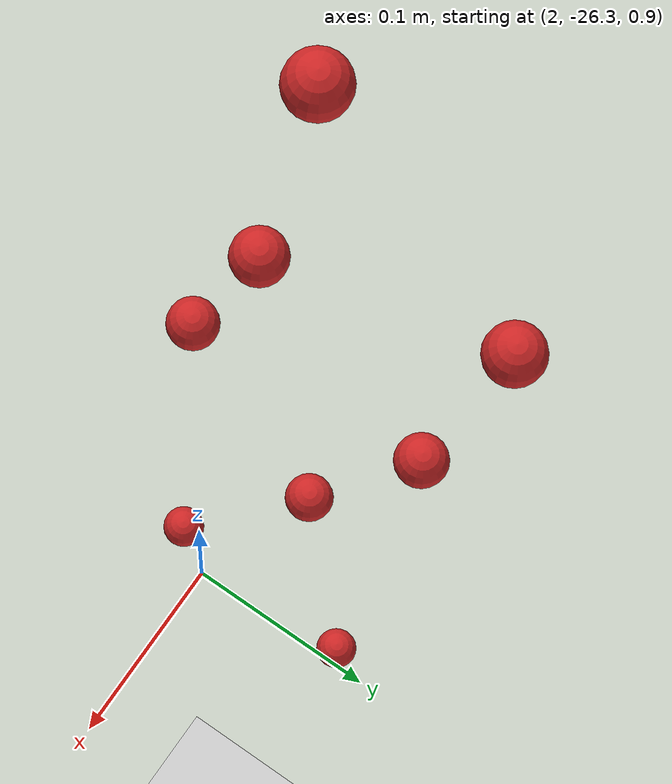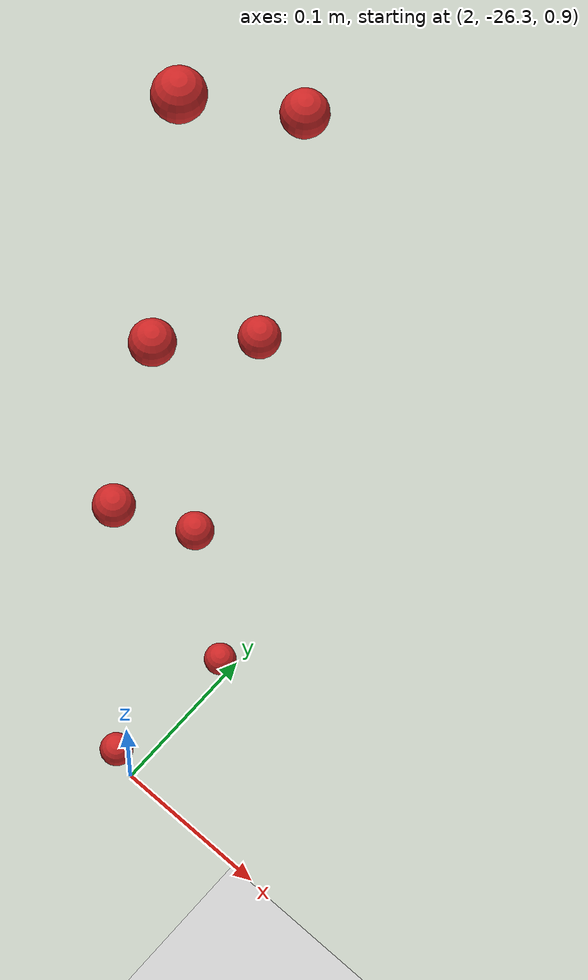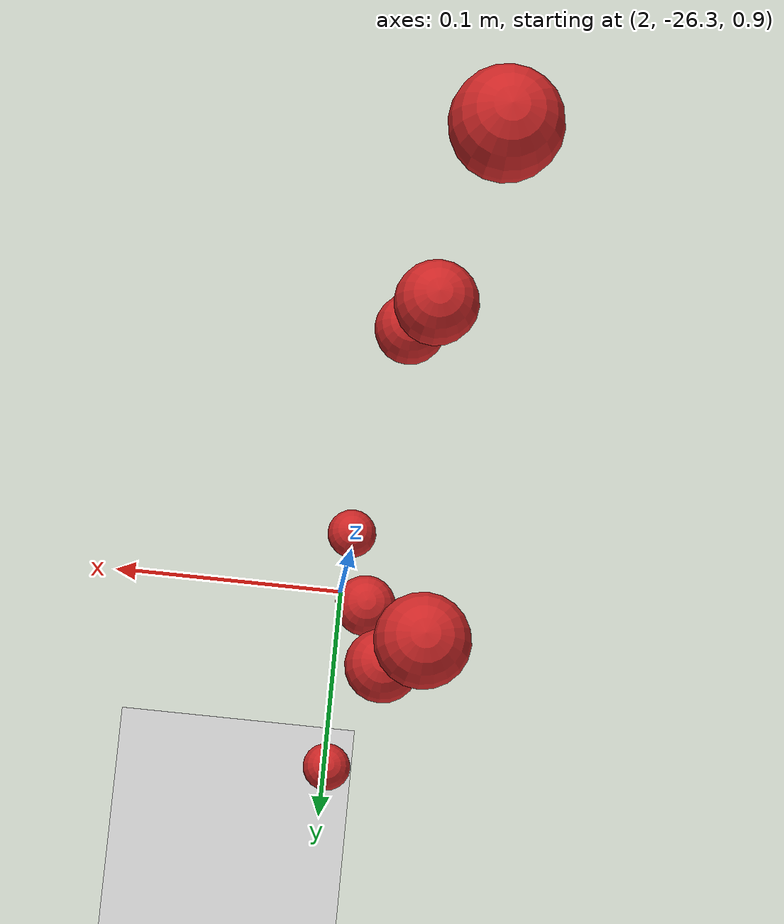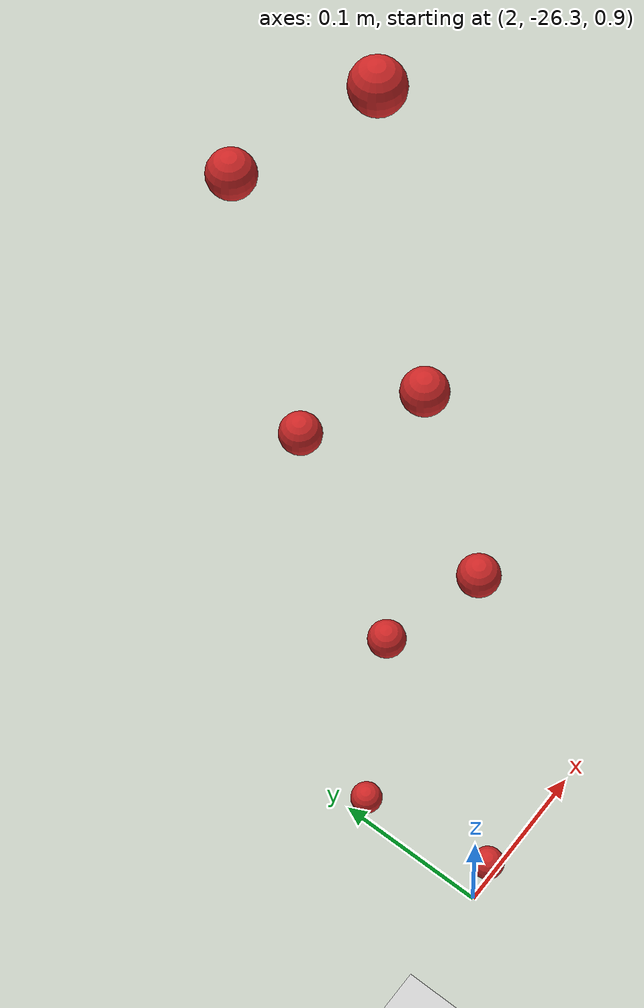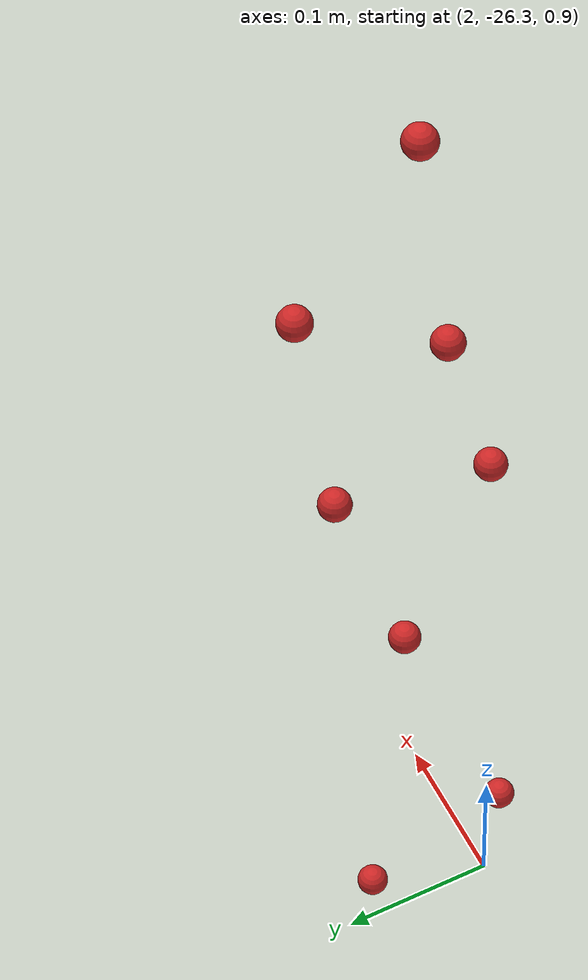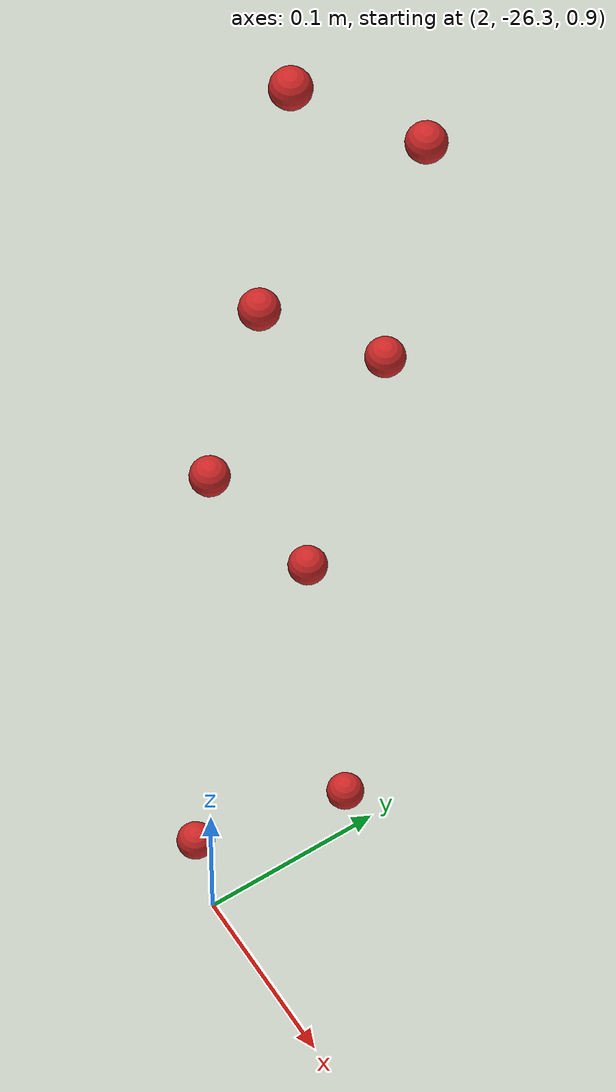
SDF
<sdf version="1.4">
 <world name="default">
  <model name="ground_plane">
   <static>1</static>
   <link name="link">
    <collision name="collision">
     <geometry><plane><normal>0 0 1</normal><size>100 100</size></plane></geometry>
     <surface><friction><ode><mu>100</mu><mu2>50</mu2></ode></friction></surface>
    </collision>
    <visual name="visual">
     <cast_shadows>0</cast_shadows>
     <geometry><plane><normal>0 0 1</normal><size>100 100</size></plane></geometry>
     <material>
      <script><uri>file://media/materials/scripts/gazebo.material</uri><name>Gazebo/Grey</name></script>
     </material>
    </visual>
    <velocity_decay><linear>0</linear><angular>0</angular></velocity_decay>
   </link>
  </model>
  <model name="apple572">
   <link name="my_apple">
    <inertial>
     <pose>2 0 0 0 -0 0</pose>
     <mass>1</mass>
     <inertia><ixx>1</ixx><ixy>0</ixy><ixz>0</ixz><iyy>1</iyy><iyz>0</iyz><izz>1</izz></inertia>
    </inertial>
    <collision name="my_apple_collision">
     <pose>2 0 1 0 -0 0</pose>
     <geometry><sphere><radius>0.01</radius></sphere></geometry>
    </collision>
    <visual name="my_apple_visual">
     <pose>2 0 1 0 -0 0</pose>
     <geometry><sphere><radius>0.01</radius></sphere></geometry>
     <material><script><name>Gazebo/Red</name><uri>__default__</uri></script></material>
    </visual>
    <gravity>0</gravity>
    <velocity_decay><linear>0</linear><angular>0</angular></velocity_decay>
   </link>
   <pose>0 -26.267 0.466315 0 -0 0</pose>
   <static>0</static>
  </model>
  <model name="apple573">
   <link name="my_apple">
    <inertial>
     <pose>2 0 0 0 -0 0</pose>
     <mass>1</mass>
     <inertia><ixx>1</ixx><ixy>0</ixy><ixz>0</ixz><iyy>1</iyy><iyz>0</iyz><izz>1</izz></inertia>
    </inertial>
    <collision name="my_apple_collision">
     <pose>2 0 1 0 -0 0</pose>
     <geometry><sphere><radius>0.01</radius></sphere></geometry>
    </collision>
    <visual name="my_apple_visual">
     <pose>2 0 1 0 -0 0</pose>
     <geometry><sphere><radius>0.01</radius></sphere></geometry>
     <material><script><name>Gazebo/Red</name><uri>__default__</uri></script></material>
    </visual>
    <gravity>0</gravity>
    <velocity_decay><linear>0</linear><angular>0</angular></velocity_decay>
   </link>
   <pose>0 -26.2496 0.632503 0 -0 0</pose>
   <static>0</static>
  </model>
  <model name="apple574">
   <link name="my_apple">
    <inertial>
     <pose>2 0 0 0 -0 0</pose>
     <mass>1</mass>
     <inertia><ixx>1</ixx><ixy>0</ixy><ixz>0</ixz><iyy>1</iyy><iyz>0</iyz><izz>1</izz></inertia>
    </inertial>
    <collision name="my_apple_collision">
     <pose>2 0 1 0 -0 0</pose>
     <geometry><sphere><radius>0.01</radius></sphere></geometry>
    </collision>
    <visual name="my_apple_visual">
     <pose>2 0 1 0 -0 0</pose>
     <geometry><sphere><radius>0.01</radius></sphere></geometry>
     <material><script><name>Gazebo/Red</name><uri>__default__</uri></script></material>
    </visual>
    <gravity>0</gravity>
    <velocity_decay><linear>0</linear><angular>0</angular></velocity_decay>
   </link>
   <pose>0 -26.2167 -0.054602 0 -0 0</pose>
   <static>0</static>
  </model>
  <model name="apple575">
   <link name="my_apple">
    <inertial>
     <pose>2 0 0 0 -0 0</pose>
     <mass>1</mass>
     <inertia><ixx>1</ixx><ixy>0</ixy><ixz>0</ixz><iyy>1</iyy><iyz>0</iyz><izz>1</izz></inertia>
    </inertial>
    <collision name="my_apple_collision">
     <pose>2 0 1 0 -0 0</pose>
     <geometry><sphere><radius>0.01</radius></sphere></geometry>
    </collision>
    <visual name="my_apple_visual">
     <pose>2 0 1 0 -0 0</pose>
     <geometry><sphere><radius>0.01</radius></sphere></geometry>
     <material><script><name>Gazebo/Red</name><uri>__default__</uri></script></material>
    </visual>
    <gravity>0</gravity>
    <velocity_decay><linear>0</linear><angular>0</angular></velocity_decay>
   </link>
   <pose>0 -26.1969 0.364194 0 -0 0</pose>
   <static>0</static>
  </model>
  <model name="apple576">
   <link name="my_apple">
    <inertial>
     <pose>2 0 0 0 -0 0</pose>
     <mass>1</mass>
     <inertia><ixx>1</ixx><ixy>0</ixy><ixz>0</ixz><iyy>1</iyy><iyz>0</iyz><izz>1</izz></inertia>
    </inertial>
    <collision name="my_apple_collision">
     <pose>2 0 1 0 -0 0</pose>
     <geometry><sphere><radius>0.01</radius></sphere></geometry>
    </collision>
    <visual name="my_apple_visual">
     <pose>2 0 1 0 -0 0</pose>
     <geometry><sphere><radius>0.01</radius></sphere></geometry>
     <material><script><name>Gazebo/Red</name><uri>__default__</uri></script></material>
    </visual>
    <gravity>0</gravity>
    <velocity_decay><linear>0</linear><angular>0</angular></velocity_decay>
   </link>
   <pose>0 -26.1769 0.531381 0 -0 0</pose>
   <static>0</static>
  </model>
  <model name="apple582">
   <link name="my_apple">
    <inertial>
     <pose>2 0 0 0 -0 0</pose>
     <mass>1</mass>
     <inertia><ixx>1</ixx><ixy>0</ixy><ixz>0</ixz><iyy>1</iyy><iyz>0</iyz><izz>1</izz></inertia>
    </inertial>
    <collision name="my_apple_collision">
     <pose>2 0 1 0 -0 0</pose>
     <geometry><sphere><radius>0.01</radius></sphere></geometry>
    </collision>
    <visual name="my_apple_visual">
     <pose>2 0 1 0 -0 0</pose>
     <geometry><sphere><radius>0.01</radius></sphere></geometry>
     <material><script><name>Gazebo/Red</name><uri>__default__</uri></script></material>
    </visual>
    <gravity>0</gravity>
    <velocity_decay><linear>0</linear><angular>0</angular></velocity_decay>
   </link>
   <pose>0 -26.3095 -0.01562 0 -0 0</pose>
   <static>0</static>
  </model>
  <model name="apple584">
   <link name="my_apple">
    <inertial>
     <pose>2 0 0 0 -0 0</pose>
     <mass>1</mass>
     <inertia><ixx>1</ixx><ixy>0</ixy><ixz>0</ixz><iyy>1</iyy><iyz>0</iyz><izz>1</izz></inertia>
    </inertial>
    <collision name="my_apple_collision">
     <pose>2 0 1 0 -0 0</pose>
     <geometry><sphere><radius>0.01</radius></sphere></geometry>
    </collision>
    <visual name="my_apple_visual">
     <pose>2 0 1 0 -0 0</pose>
     <geometry><sphere><radius>0.01</radius></sphere></geometry>
     <material><script><name>Gazebo/Red</name><uri>__default__</uri></script></material>
    </visual>
    <gravity>0</gravity>
    <velocity_decay><linear>0</linear><angular>0</angular></velocity_decay>
   </link>
   <pose>0 -26.2405 0.206955 0 -0 0</pose>
   <static>0</static>
  </model>
  <model name="apple587">
   <link name="my_apple">
    <inertial>
     <pose>2 0 0 0 -0 0</pose>
     <mass>1</mass>
     <inertia><ixx>1</ixx><ixy>0</ixy><ixz>0</ixz><iyy>1</iyy><iyz>0</iyz><izz>1</izz></inertia>
    </inertial>
    <collision name="my_apple_collision">
     <pose>2 0 1 0 -0 0</pose>
     <geometry><sphere><radius>0.01</radius></sphere></geometry>
    </collision>
    <visual name="my_apple_visual">
     <pose>2 0 1 0 -0 0</pose>
     <geometry><sphere><radius>0.01</radius></sphere></geometry>
     <material><script><name>Gazebo/Red</name><uri>__default__</uri></script></material>
    </visual>
    <gravity>0</gravity>
    <velocity_decay><linear>0</linear><angular>0</angular></velocity_decay>
   </link>
   <pose>0 -26.2957 0.342761 0 -0 0</pose>
   <static>0</static>
  </model>
 </world>
</sdf>
